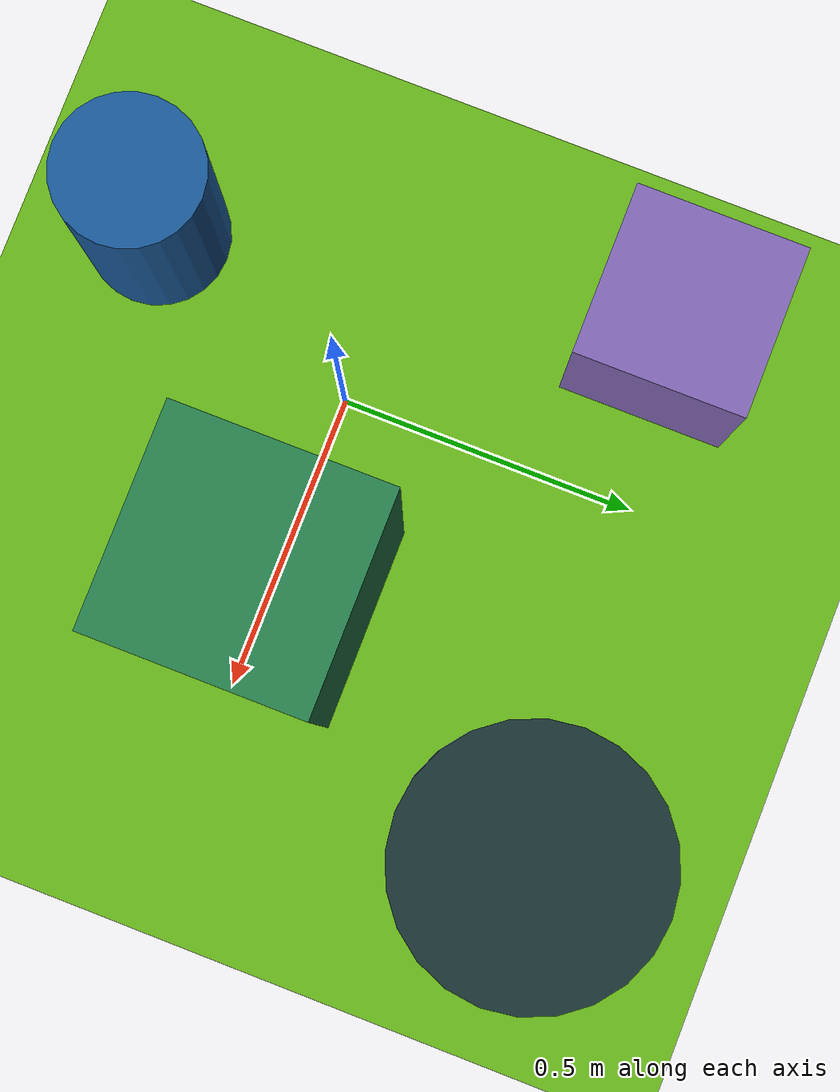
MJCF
<mujoco>
   <asset>
<texture type="skybox" builtin="gradient" rgb1="0.3 0.4 0.6" rgb2="0.3 0.0 0.4" width="256" height="256"/>
<texture name="checker_0" builtin="checker" type="2d" rgb1="0.3 0.6 0.6" rgb2="0.0 0.4 0.0" width="200" height="200"/>
<texture name="flat_1" builtin="flat" rgb1="0.1 0.2 0.2" rgb2="0.1 0.2 0.2"  width="200" height="200"/>
<texture name="flat_2" builtin="flat" rgb1="0.5 0.4 0.7" rgb2="0.5 0.4 0.7"  width="200" height="200"/>
<texture name="gradient_3" builtin="gradient" rgb1="0.1 0.6 0.7" rgb2="0.1 0.1 0.5" width="200" height="200"/><material name="checker_0_mat" reflectance="0" texrepeat="6 6" texture="checker_0" texuniform="false" />
<material name="flat_1_mat" reflectance="0" texture="flat_1" texuniform="true"/>
<material name="flat_2_mat" reflectance="0" texture="flat_2" texuniform="true"/>
<material name="gradient_3_mat" reflectance="0" texture="gradient_3" texuniform="true"/>
   </asset>

   <worldbody>
      <light diffuse=".9 .9 .9" pos="0 0 3" dir="0 0 -1"/>
     <geom type="plane" size="1 1 0.1" rgba="0.4 0.7 0.1 1"/>
<geom type="box" pos="0.34 -0.0 0.28" size="0.17 0.17 0.28" material="checker_0_mat" />
<geom type="cylinder" pos="0.59 0.54 0.13" size="0.22 0.13 0.13" material="flat_1_mat" />
<geom type="box" pos="-0.29 0.46 0.14" size="0.14 0.14 0.14" material="flat_2_mat" />
<geom type="cylinder" pos="-0.15 -0.39 0.18" size="0.12 0.18 0.18" material="gradient_3_mat" /><camera euler="60 0 180" fovy="60" name="camera_a" pos="0 -1.5 1"></camera>   </worldbody>
</mujoco>
